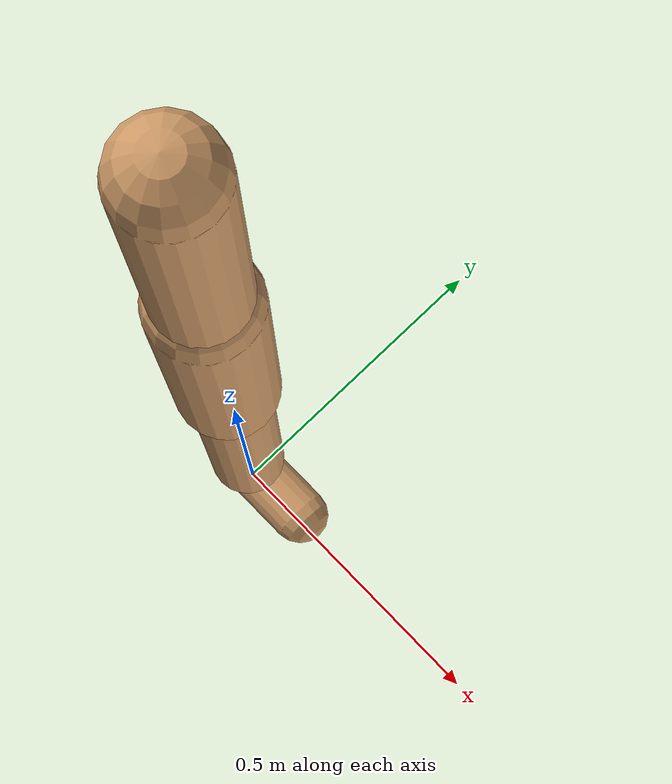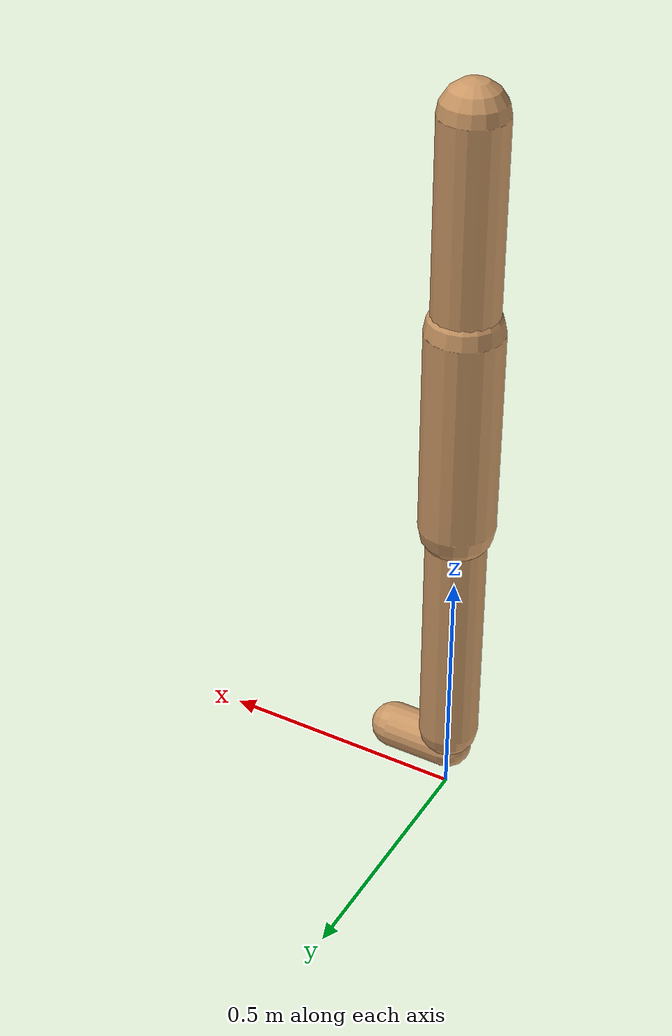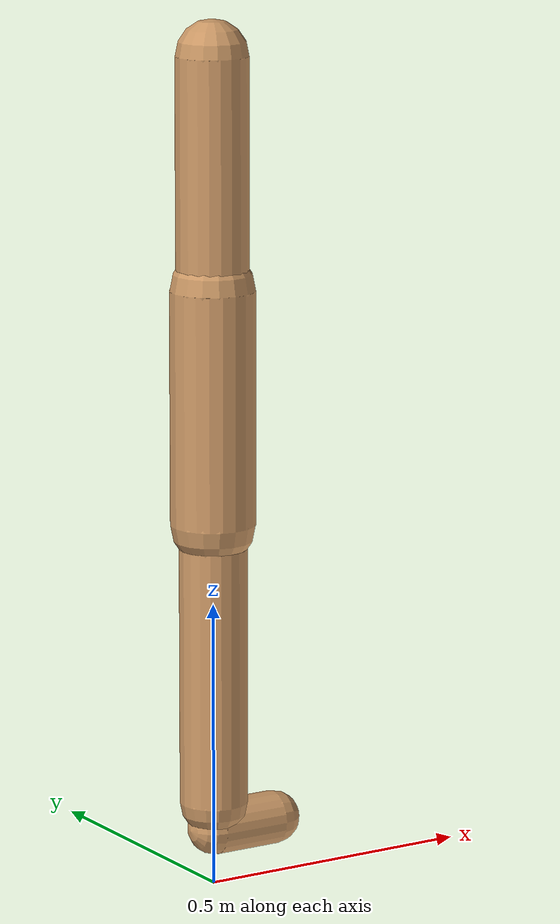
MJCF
<mujoco model="walker2d">
  <compiler angle="degree" coordinate="global" inertiafromgeom="true" />
  <default>
    <joint armature="0.01" damping=".1" limited="true" />
    <geom conaffinity="0" condim="3" contype="1" density="1000" friction="0.8 .1 .1" rgba="0.8 0.6 .4 1" />
  </default>
  <option integrator="RK4" timestep="0.002" />
  <worldbody>

    <body name="torso" pos="0 0 -0.08977551944033578">
      <joint armature="0" axis="1 0 0" damping="0" limited="false" name="ignorex" pos="0 0 0" stiffness="0" type="slide" />
      <joint armature="0" axis="0 0 1" damping="0" limited="false" name="ignorez" pos="0 0 0" ref="1.25" stiffness="0" type="slide" />
      <joint armature="0" axis="0 1 0" damping="0" limited="false" name="ignorey" pos="0 0 0" stiffness="0" type="hinge" />
      <geom fromto="0 0 1.45 0 0 1.05" name="torso_geom" size="0.06313455678503425" type="capsule" />
      <body name="thigh">
        <joint axis="0 -1 0" name="thigh_joint" pos="0 0 1.05" range="-150 0" type="hinge" />
        <geom fromto="0.0 0.0 1.05 0.0 0.0 0.6425252460506854" name="thigh_geom" size="0.07404850395627557" type="capsule" />
        <body name="leg" pos="0.0 0.0 0.04252524605068542">
          <joint axis="0 -1 0" name="leg_joint" pos="0 0 0.6" range="-150 0" type="hinge" />
          <geom fromto="0.0 0.0 0.6 0.0 0.0 0.1472502733896504" name="leg_geom" size="0.059238803165020455" type="capsule" />
          <body name="foot" pos="0.0 0.0 0.047250273389650405">
            <joint axis="0 -1 0" name="foot_joint" pos="0 0 0.1" range="-45 45" type="hinge" />
            <geom fromto="0.0 0.0 0.1 0.1215708458507852 0.0 0.1" name="foot_geom" size="0.04658462930831391" type="capsule" />
          </body>
        </body>
      </body>

      <body name="thigh_left">
        <joint axis="0 -1 0" name="thigh_left_joint" pos="0 0 1.05" range="-150 0" type="hinge" />
        <geom fromto="0.0 0.0 1.05 0.0 0.0 0.6425252460506854" name="thigh_left_geom" rgba=".7 .3 .6 1" size="0.07404850395627557" type="capsule" />
        <body name="leg_left" pos="0.0 0.0 0.04252524605068542">
          <joint axis="0 -1 0" name="leg_left_joint" pos="0 0 0.6" range="-150 0" type="hinge" />
          <geom fromto="0.0 0.0 0.6 0.0 0.0 0.1472502733896504" name="leg_left_geom" rgba=".7 .3 .6 1" size="0.059238803165020455" type="capsule" />
          <body name="foot_left" pos="0.0 0.0 0.047250273389650405">
            <joint axis="0 -1 0" name="foot_left_joint" pos="0 0 0.1" range="-45 45" type="hinge" />
            <geom fromto="0.0 0.0 0.1 0.1215708458507852 0.0 0.1" name="foot_left_geom" rgba=".7 .3 .6 1" size="0.04658462930831391" type="capsule" />
          </body>
        </body>
      </body>
    </body>
  </worldbody>
  <actuator>

    <motor ctrllimited="true" ctrlrange="-1.0 1.0" gear="100" joint="thigh_joint" />
    <motor ctrllimited="true" ctrlrange="-1.0 1.0" gear="100" joint="leg_joint" />
    <motor ctrllimited="true" ctrlrange="-1.0 1.0" gear="100" joint="foot_joint" />
    <motor ctrllimited="true" ctrlrange="-1.0 1.0" gear="100" joint="thigh_left_joint" />
    <motor ctrllimited="true" ctrlrange="-1.0 1.0" gear="100" joint="leg_left_joint" />
    <motor ctrllimited="true" ctrlrange="-1.0 1.0" gear="100" joint="foot_left_joint" />

  </actuator>
</mujoco>
